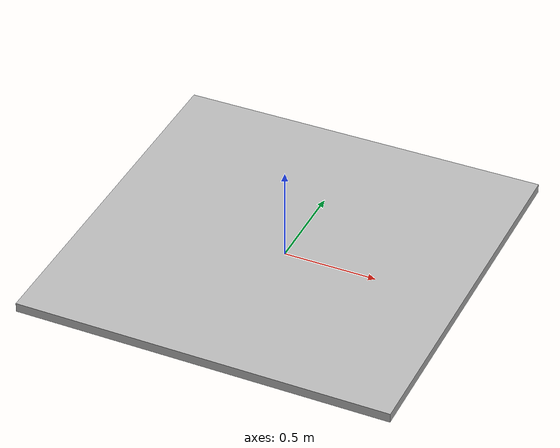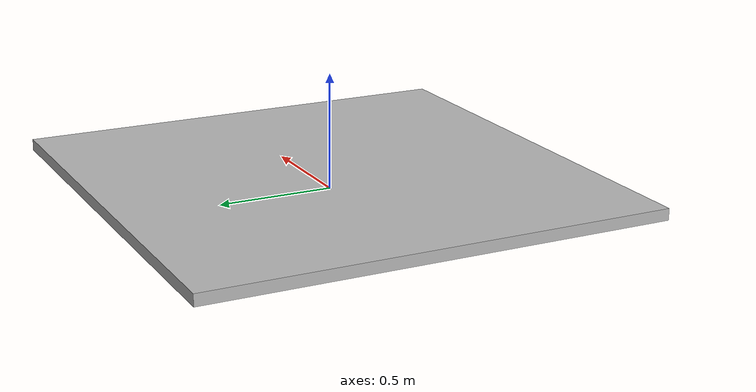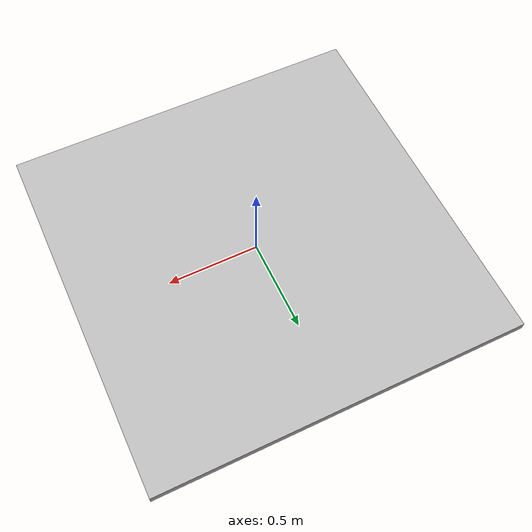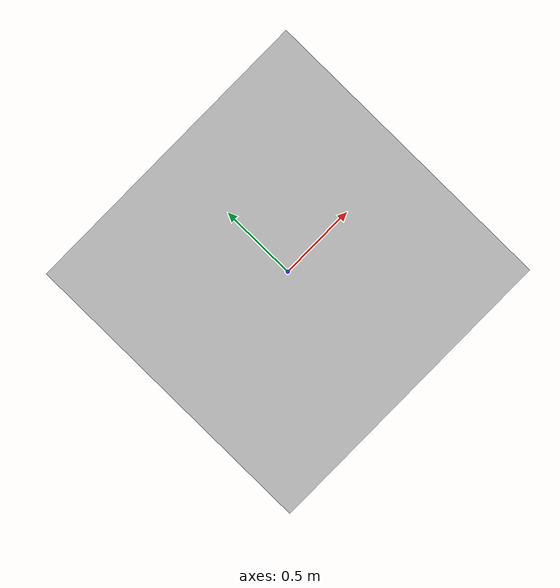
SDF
<?xml version="1.0" ?>
<sdf version='1.5'>
<model name='home'>

<static>true</static>
<link name="link">
  <pose frame=''>0 0 0.05 0 0 0</pose>
  <collision name="collision">
    <geometry>
      <cylinder>
        <radius>1.0</radius>
        <length>0.08</length>
      </cylinder>
    </geometry>
  </collision>

  <visual name="visual">
    <cast_shadows>false</cast_shadows>
    <geometry>
      <box>
        <size>2 2 .05</size>
      </box>
    </geometry>
    <material>
      <script>
        <uri>model://home/materials/scripts</uri>
        <uri>model://home/materials/textures</uri>
        <name>vrc/home</name>
      </script>
    </material>
  </visual>

</link>
</model>
</sdf>
